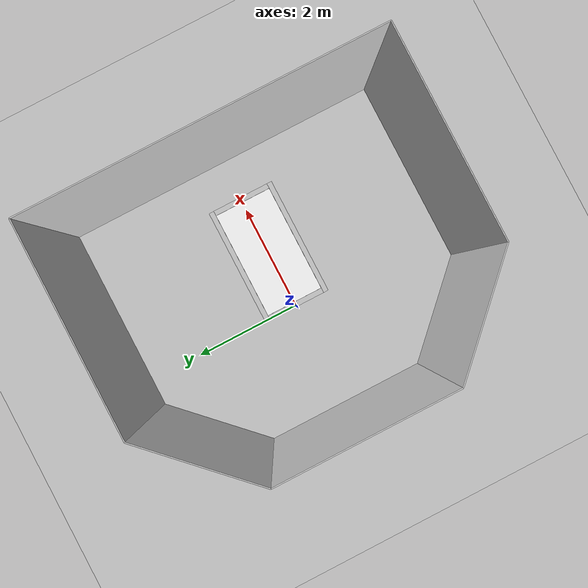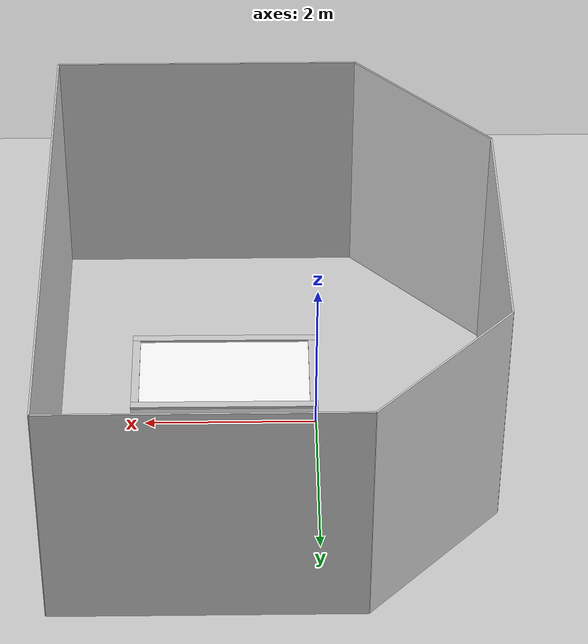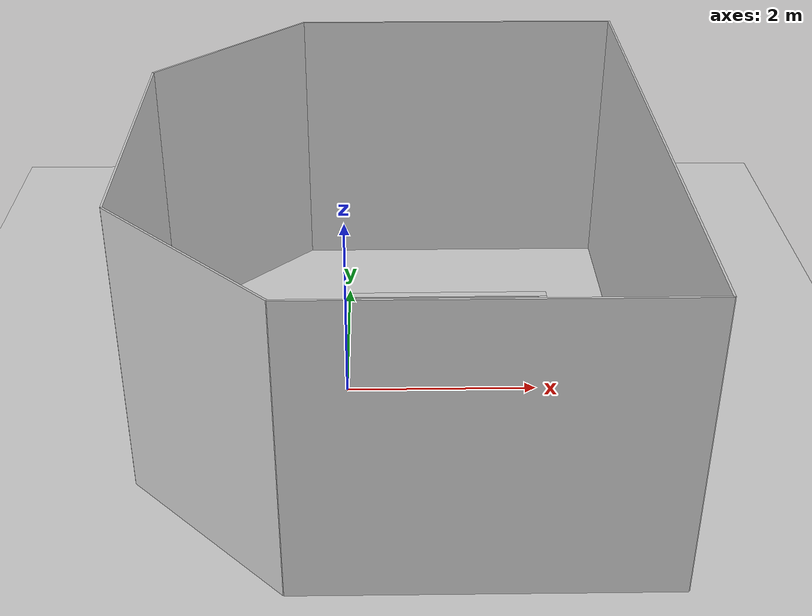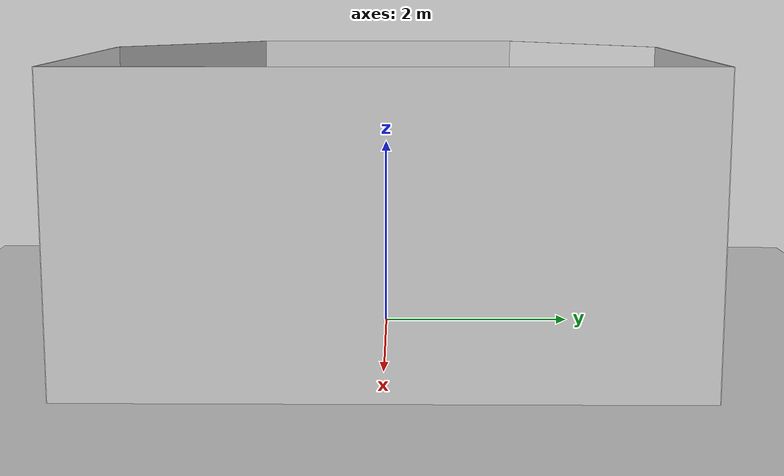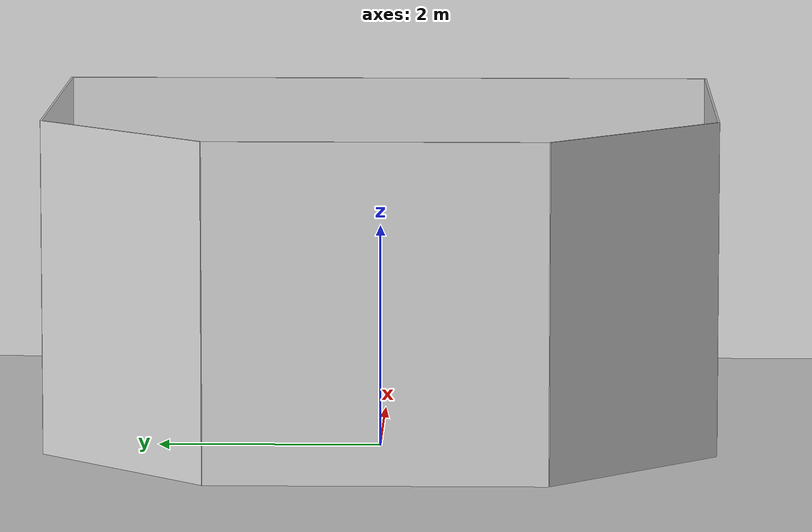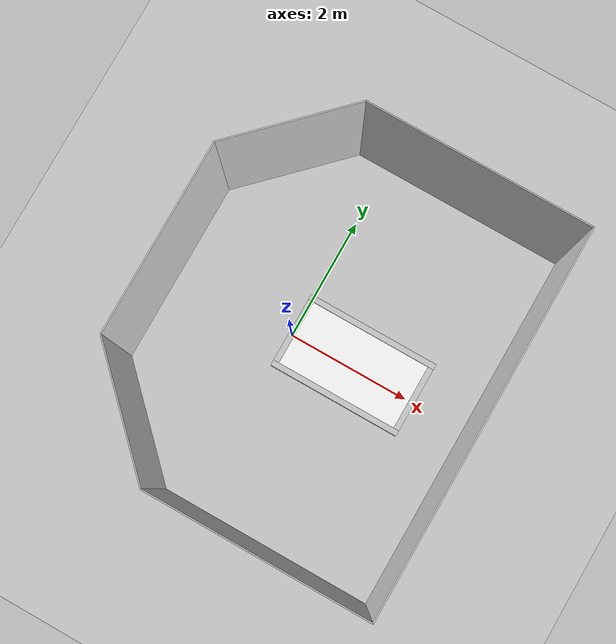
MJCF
<mujoco model="air_hockey_table">

    <option timestep="0.001" cone="elliptic" impratio="1"/>

    <asset>
        <material name="grey" specular="0.5" shininess="0.25" rgba="0.8 0.8 0.8 1"/>
        <material name="white" specular="0.5" shininess="0.25" rgba="1.0 1.0 1.0 1"/>
        <material name="red" specular="0.5" shininess="0.25" rgba="1.0 0.0 0.0 1"/>
        <material name="green" specular="0.5" shininess="0.25" rgba="0.0 1.0 0.0 1"/>
        <material name="blue" specular="0.5" shininess="0.25" rgba="0.0 0.0 1.0 1"/>
        <material name="transparent" specular="0.5" shininess="0.25" rgba="0.0 0.0 1.0 0"/>
        <texture type="skybox" builtin="gradient" rgb1="0.3 0.5 0.7" rgb2="0 0 0" width="512"
                 height="3072"/>
        <texture file="/work/10993/rohanpatel01/vista/air-hockey-rl/.venv_old_main/lib/python3.14/site-packages/robosuite/models/assets/textures/light-gray-floor-tile.png" type="2d" name="texplane"/>
        <material name="floorplane" reflectance="0.01" shininess="0.0" specular="0.0" texrepeat="2 2" texture="texplane" texuniform="true"/>
        <texture file="/work/10993/rohanpatel01/vista/air-hockey-rl/.venv_old_main/lib/python3.14/site-packages/robosuite/models/assets/textures/light-gray-plaster.png" type="2d" name="tex-light-gray-plaster"/>
        <material name="walls_mat" reflectance="0.0" shininess="0.1" specular="0.1" texrepeat="3 3" texture="tex-light-gray-plaster" texuniform="true" />
        <texture file="/work/10993/rohanpatel01/vista/air-hockey-rl/.venv_old_main/lib/python3.14/site-packages/robosuite/models/assets/textures/ceramic.png" type="cube" name="tex-ceramic"/>
        <material name="table_ceramic" reflectance="0.0" shininess="0.0" specular="0.2" texrepeat="1 1" texture="tex-ceramic" />
    </asset>

    <default>
        <geom condim="4" solref="0.02 0.3"/>
        <default class="rim">
                <geom type="box" material="grey" condim="6" friction="10000 0.0 0.0" priority="1"
                solref="-100000 -250" solimp="0.99 0.999 0.001 0.5 2" group="1"/>
        </default>
    </default>

    <worldbody>
        <body name="table" pos="1.064 0 0.8" axisangle="0 1 0 -0.09">
            <body name="table_surface">
                <geom name="surface" type="box" material="white" size="1.064 0.609 0.0505" pos="0 0 -0.0505"
                condim="4" friction="0.08 0.08 0.0" priority="1"
                group="1" contype="1" conaffinity="1"/>
            </body>
            <body name="rim">
                <geom name="rim_home_l" class="rim" size="0.01 0.1945 0.005" pos="-1.019 0.3245 0.005" group="1" solref="-100000 -250" solimp="0.99 0.999 0.001 0.5 2"/>
                <geom name="rim_home_r" class="rim" size="0.045 0.1945 0.005" pos="-1.019 -0.3245 0.005" group="1" solref="-100000 -250" solimp="0.99 0.999 0.001 0.5 2"/>
                <geom name="rim_home_bound_l" class="rim" type="cylinder" size="0.005 0.005" pos="-0.979 0.13 0.005" group="1" solref="-100000 -250" solimp="0.99 0.999 0.001 0.5 2"/>
                <geom name="rim_home_bound_l_tail" class="rim" size="0.0425 0.005 0.005" pos="-1.0215 0.13 0.005" solref="-100000 -250" solimp="0.99 0.999 0.001 0.5 2"/>
                <geom name="rim_home_bound_r" class="rim" type="cylinder" size="0.005 0.005" pos="-0.979 -0.13 0.005" group="1" solref="-100000 -250" solimp="0.99 0.999 0.001 0.5 2"/>
                <geom name="rim_home_bound_r_tail" class="rim" size="0.0425 0.005 0.005" pos="-1.0215 -0.13 0.005" group="1" solref="-100000 -250" solimp="0.99 0.999 0.001 0.5 2"/>
                <geom name="rim_home_top" class="rim" size="0.045 0.519 0.01" pos="-1.019 0 0.02" group="1" solref="-100000 -250" solimp="0.99 0.999 0.001 0.5 2"/>
                <geom name="rim_right" class="rim" size="1.064 0.045 0.015" pos="0 0.564 0.015" group="1" solref="-100000 -250" solimp="0.99 0.999 0.001 0.5 2"/>
                <geom name="rim_left" class="rim" size="1.064 0.045 0.015" pos="0 -0.564 0.015" group="1" solref="-100000 -250" solimp="0.99 0.999 0.001 0.5 2"/>
                <geom name="rim_away_l" class="rim" size="0.01 0.1945 0.005" pos="1.019 0.3245 0.005" group="1" solref="-100000 -250" solimp="0.99 0.999 0.001 0.5 2"/>
                <geom name="rim_away_r" class="rim" size="0.01 0.1945 0.005" pos="1.019 -0.3245 0.005" group="1" solref="-100000 -250" solimp="0.99 0.999 0.001 0.5 2"/>
                <geom name="rim_away_bound_l" class="rim" type="cylinder" size="0.005 0.005" pos="0.979 0.13 0.005" group="1" solref="-100000 -250" solimp="0.99 0.999 0.001 0.5 2"/>
                <geom name="rim_away_bound_l_tail" class="rim" size="0.0425 0.005 0.005" pos="1.0215 0.13 0.005" group="1" solref="-100000 -250" solimp="0.99 0.999 0.001 0.5 2"/>
                <geom name="rim_away_bound_r" class="rim" type="cylinder" size="0.005 0.005" pos="0.979 -0.13 0.005" group="1" solref="-100000 -250" solimp="0.99 0.999 0.001 0.5 2"/>
                <geom name="rim_away_bound_r_tail" class="rim" size="0.0425 0.005 0.005" pos="1.0215 -0.13 0.005" group="1" solref="-100000 -250" solimp="0.99 0.999 0.001 0.5 2"/>
                <geom name="rim_away_top" class="rim" size="0.045 0.519 0.01" pos="1.019 0 0.02" group="1" solref="-100000 -250" solimp="0.99 0.999 0.001 0.5 2"/>
            </body>
        </body>

        <!-- front view -->
        <camera mode="fixed" name="frontview" pos="1 0 1.45" quat="0.56 0.43 0.43 0.56"/>
        <!-- bird view: top-down, far enough back to see full table and the
             puck at its spawn position (world x≈1.98). -->
        <camera mode="fixed" name="birdview" pos="0.8 0 4.0" quat="0.7071 0 0 0.7071"/>
        <!-- agent view -->
        <camera mode="fixed" name="agentview" pos="0.5 0 3" quat="0.7071 0 0 0.7071"/>
        <!-- side view -->
        <camera mode="fixed" name="sideview" pos="1.0 2.85 1.6" quat="0.009905065491771751 0.006877963156909582 0.5912228352893879 0.806418094001364" />
        <!-- back view: frontview mirrored across world Z (camera on opposite side of table) -->
        <camera mode="fixed" name="backview" pos="-1 0 1.45" quat="-0.56 -0.43 0.43 0.56"/>
        <!-- puck view: top-down close-up over the puck spawn region (world x≈1.98)
             so the 3cm puck is unambiguously visible. Same orientation as birdview. -->
        <camera mode="fixed" name="puckview" pos="1.5 0 2.5" quat="0.7071 0 0 0.7071"/>

        <light pos="0 0 3" dir="0 0 -1" directional="true"/>
        <geom pos="0 0 -0.1" name="floor" size="0 0 0.05" type="plane" material="floorplane" group="1" />

        <!-- Walls (visual only) -->
        <geom pos="-1.25 2.25 1.5" quat="0.6532815 0.6532815 0.2705981 0.2705981" size="1.06 1.5 0.01" type="box" conaffinity="0" contype="0" group="1" name="wall_leftcorner_visual" material="walls_mat"/>
        <geom pos="-1.25 -2.25 1.5" quat="0.6532815 0.6532815 -0.2705981 -0.2705981" size="1.06 1.5 0.01" type="box" conaffinity="0" contype="0" group="1" name="wall_rightcorner_visual" material="walls_mat"/>
        <geom pos="1.25 3 1.5" quat="0.7071 0.7071 0 0" size="1.75 1.5 0.01" type="box" conaffinity="0" contype="0" group="1" name="wall_left_visual" material="walls_mat"/>
        <geom pos="1.25 -3 1.5" quat="0.7071 -0.7071 0 0" size="1.75 1.5 0.01" type="box" conaffinity="0" contype="0" group="1" name="wall_right_visual" material="walls_mat"/>
        <geom pos="-2 0 1.5" quat="0.5 0.5 0.5 0.5" size="1.5 1.5 0.01" type="box" conaffinity="0" contype="0" group="1" name="wall_rear_visual" material="walls_mat"/>
        <geom pos="3 0 1.5" quat="0.5 0.5 -0.5 -0.5" size="3 1.5 0.01" type="box" conaffinity="0" contype="0" group="1" name="wall_front_visual" material="walls_mat"/>
    </worldbody>
</mujoco>
